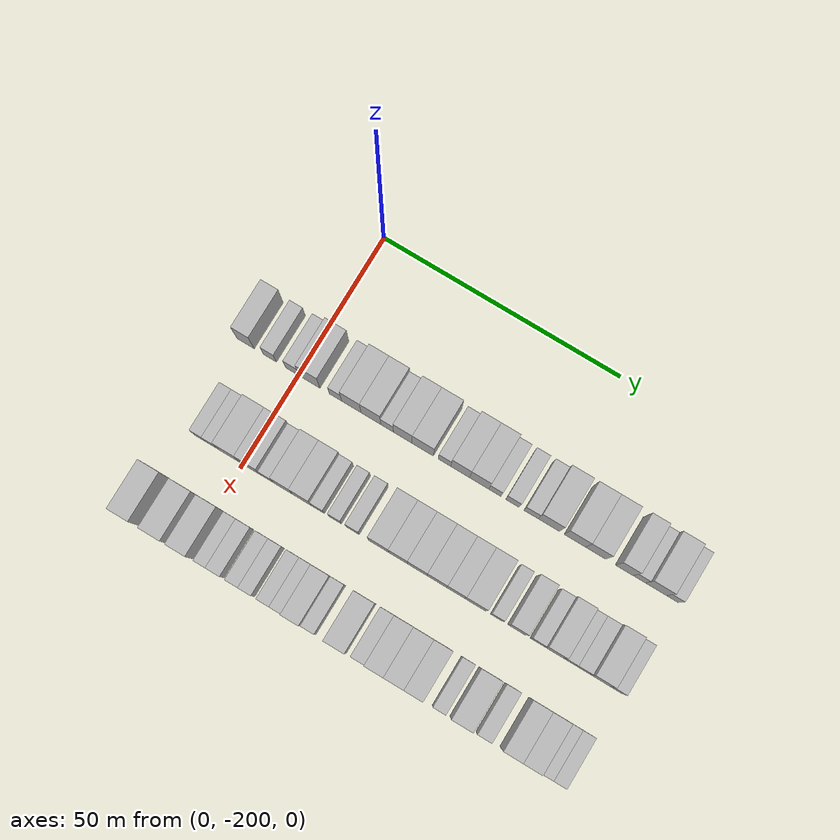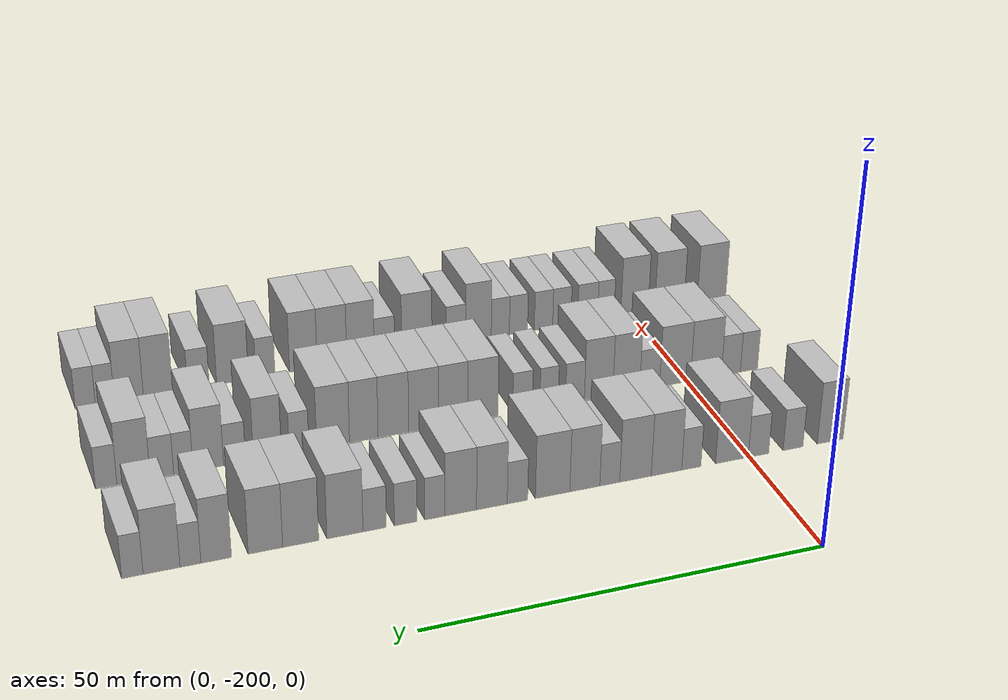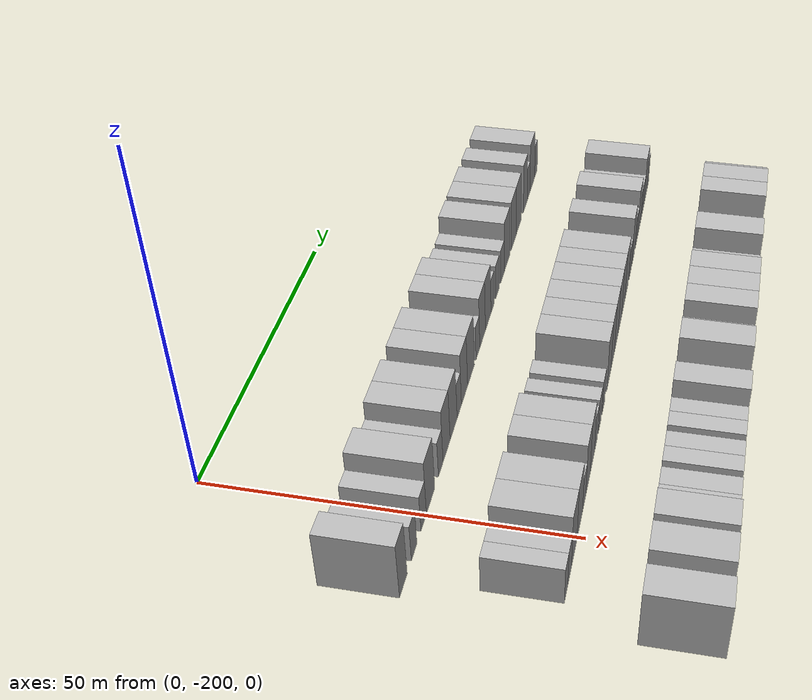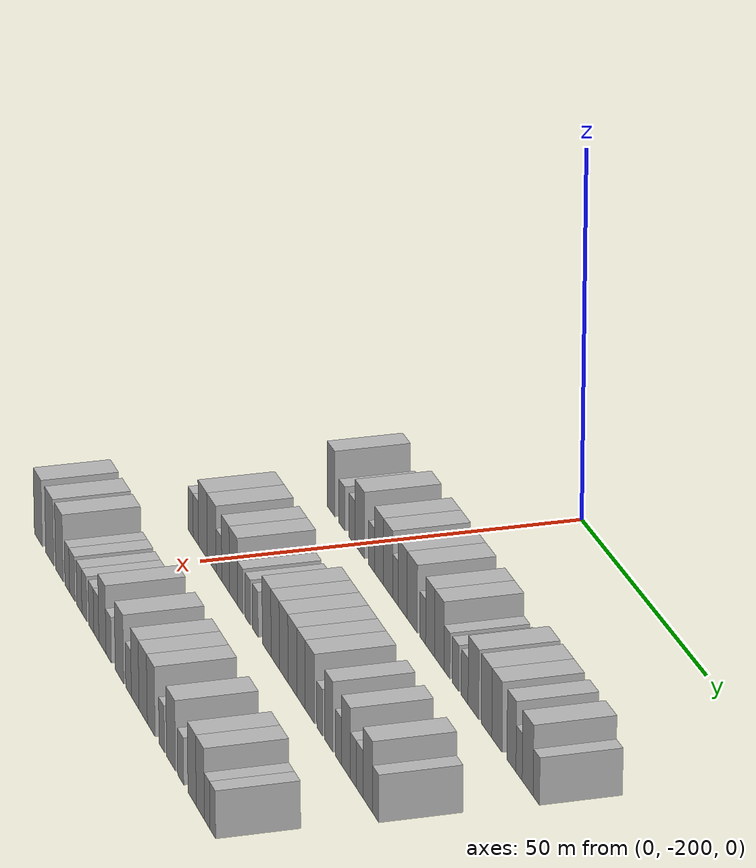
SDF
<sdf version="1.6">
 <world name="default">
  <model name="building_35">
   <static>1</static>
   <pose>25.0000 -211.2491 0 0.000000 0.000000 0.000000</pose>
   <link name="link">
    <pose>0 0 4.50 0 0 0</pose>
    <collision name="collision"><geometry><box><size>10.0000 3.6361 9.0000</size></box></geometry></collision>
    <visual name="visual">
     <cast_shadows>0</cast_shadows>
     <geometry><box><size>10.0000 3.6361 9.0000</size></box></geometry>
     <material>
      <script>
       <uri>model://HANNAS_wall/materials/scripts</uri>
       <uri>model://HANNAS_wall/materials/textures</uri>
       <name>vrc/HANNAS_wall</name>
      </script>
     </material>
    </visual>
   </link>
  </model>
  <model name="building_36">
   <static>1</static>
   <pose>25.0000 -206.0531 0 0.000000 0.000000 0.000000</pose>
   <link name="link">
    <pose>0 0 3.00 0 0 0</pose>
    <collision name="collision"><geometry><box><size>10.0000 2.7557 6.0000</size></box></geometry></collision>
    <visual name="visual">
     <cast_shadows>0</cast_shadows>
     <geometry><box><size>10.0000 2.7557 6.0000</size></box></geometry>
     <material>
      <script>
       <uri>model://HANNAS_wall/materials/scripts</uri>
       <uri>model://HANNAS_wall/materials/textures</uri>
       <name>vrc/HANNAS_wall</name>
      </script>
     </material>
    </visual>
   </link>
  </model>
  <model name="building_37">
   <static>1</static>
   <pose>25.0000 -201.2684 0 0.000000 0.000000 0.000000</pose>
   <link name="link">
    <pose>0 0 3.00 0 0 0</pose>
    <collision name="collision"><geometry><box><size>10.0000 2.8138 6.0000</size></box></geometry></collision>
    <visual name="visual">
     <cast_shadows>0</cast_shadows>
     <geometry><box><size>10.0000 2.8138 6.0000</size></box></geometry>
     <material>
      <script>
       <uri>model://HANNAS_wall/materials/scripts</uri>
       <uri>model://HANNAS_wall/materials/textures</uri>
       <name>vrc/HANNAS_wall</name>
      </script>
     </material>
    </visual>
   </link>
  </model>
  <model name="building_38">
   <static>1</static>
   <pose>25.0000 -197.6301 0 0.000000 0.000000 0.000000</pose>
   <link name="link">
    <pose>0 0 4.50 0 0 0</pose>
    <collision name="collision"><geometry><box><size>10.0000 4.4629 9.0000</size></box></geometry></collision>
    <visual name="visual">
     <cast_shadows>0</cast_shadows>
     <geometry><box><size>10.0000 4.4629 9.0000</size></box></geometry>
     <material>
      <script>
       <uri>model://HANNAS_wall/materials/scripts</uri>
       <uri>model://HANNAS_wall/materials/textures</uri>
       <name>vrc/HANNAS_wall</name>
      </script>
     </material>
    </visual>
   </link>
  </model>
  <model name="building_39">
   <static>1</static>
   <pose>25.0000 -192.0988 0 0.000000 0.000000 0.000000</pose>
   <link name="link">
    <pose>0 0 3.00 0 0 0</pose>
    <collision name="collision"><geometry><box><size>10.0000 2.5997 6.0000</size></box></geometry></collision>
    <visual name="visual">
     <cast_shadows>0</cast_shadows>
     <geometry><box><size>10.0000 2.5997 6.0000</size></box></geometry>
     <material>
      <script>
       <uri>model://HANNAS_wall/materials/scripts</uri>
       <uri>model://HANNAS_wall/materials/textures</uri>
       <name>vrc/HANNAS_wall</name>
      </script>
     </material>
    </visual>
   </link>
  </model>
  <model name="building_40">
   <static>1</static>
   <pose>25.0000 -188.7515 0 0.000000 0.000000 0.000000</pose>
   <link name="link">
    <pose>0 0 4.50 0 0 0</pose>
    <collision name="collision"><geometry><box><size>10.0000 4.0948 9.0000</size></box></geometry></collision>
    <visual name="visual">
     <cast_shadows>0</cast_shadows>
     <geometry><box><size>10.0000 4.0948 9.0000</size></box></geometry>
     <material>
      <script>
       <uri>model://HANNAS_wall/materials/scripts</uri>
       <uri>model://HANNAS_wall/materials/textures</uri>
       <name>vrc/HANNAS_wall</name>
      </script>
     </material>
    </visual>
   </link>
  </model>
  <model name="building_41">
   <static>1</static>
   <pose>25.0000 -184.6047 0 0.000000 0.000000 0.000000</pose>
   <link name="link">
    <pose>0 0 4.50 0 0 0</pose>
    <collision name="collision"><geometry><box><size>10.0000 4.1988 9.0000</size></box></geometry></collision>
    <visual name="visual">
     <cast_shadows>0</cast_shadows>
     <geometry><box><size>10.0000 4.1988 9.0000</size></box></geometry>
     <material>
      <script>
       <uri>model://HANNAS_wall/materials/scripts</uri>
       <uri>model://HANNAS_wall/materials/textures</uri>
       <name>vrc/HANNAS_wall</name>
      </script>
     </material>
    </visual>
   </link>
  </model>
  <model name="building_42">
   <static>1</static>
   <pose>25.0000 -181.1895 0 0.000000 0.000000 0.000000</pose>
   <link name="link">
    <pose>0 0 3.00 0 0 0</pose>
    <collision name="collision"><geometry><box><size>10.0000 2.6315 6.0000</size></box></geometry></collision>
    <visual name="visual">
     <cast_shadows>0</cast_shadows>
     <geometry><box><size>10.0000 2.6315 6.0000</size></box></geometry>
     <material>
      <script>
       <uri>model://HANNAS_wall/materials/scripts</uri>
       <uri>model://HANNAS_wall/materials/textures</uri>
       <name>vrc/HANNAS_wall</name>
      </script>
     </material>
    </visual>
   </link>
  </model>
  <model name="building_43">
   <static>1</static>
   <pose>25.0000 -177.9051 0 0.000000 0.000000 0.000000</pose>
   <link name="link">
    <pose>0 0 4.50 0 0 0</pose>
    <collision name="collision"><geometry><box><size>10.0000 3.9375 9.0000</size></box></geometry></collision>
    <visual name="visual">
     <cast_shadows>0</cast_shadows>
     <geometry><box><size>10.0000 3.9375 9.0000</size></box></geometry>
     <material>
      <script>
       <uri>model://HANNAS_wall/materials/scripts</uri>
       <uri>model://HANNAS_wall/materials/textures</uri>
       <name>vrc/HANNAS_wall</name>
      </script>
     </material>
    </visual>
   </link>
  </model>
  <model name="building_44">
   <static>1</static>
   <pose>25.0000 -173.6956 0 0.000000 0.000000 0.000000</pose>
   <link name="link">
    <pose>0 0 4.50 0 0 0</pose>
    <collision name="collision"><geometry><box><size>10.0000 4.4815 9.0000</size></box></geometry></collision>
    <visual name="visual">
     <cast_shadows>0</cast_shadows>
     <geometry><box><size>10.0000 4.4815 9.0000</size></box></geometry>
     <material>
      <script>
       <uri>model://HANNAS_wall/materials/scripts</uri>
       <uri>model://HANNAS_wall/materials/textures</uri>
       <name>vrc/HANNAS_wall</name>
      </script>
     </material>
    </visual>
   </link>
  </model>
  <model name="building_45">
   <static>1</static>
   <pose>25.0000 -169.1387 0 0.000000 0.000000 0.000000</pose>
   <link name="link">
    <pose>0 0 3.00 0 0 0</pose>
    <collision name="collision"><geometry><box><size>10.0000 2.6322 6.0000</size></box></geometry></collision>
    <visual name="visual">
     <cast_shadows>0</cast_shadows>
     <geometry><box><size>10.0000 2.6322 6.0000</size></box></geometry>
     <material>
      <script>
       <uri>model://HANNAS_wall/materials/scripts</uri>
       <uri>model://HANNAS_wall/materials/textures</uri>
       <name>vrc/HANNAS_wall</name>
      </script>
     </material>
    </visual>
   </link>
  </model>
  <model name="building_46">
   <static>1</static>
   <pose>25.0000 -165.8523 0 0.000000 0.000000 0.000000</pose>
   <link name="link">
    <pose>0 0 4.50 0 0 0</pose>
    <collision name="collision"><geometry><box><size>10.0000 3.9406 9.0000</size></box></geometry></collision>
    <visual name="visual">
     <cast_shadows>0</cast_shadows>
     <geometry><box><size>10.0000 3.9406 9.0000</size></box></geometry>
     <material>
      <script>
       <uri>model://HANNAS_wall/materials/scripts</uri>
       <uri>model://HANNAS_wall/materials/textures</uri>
       <name>vrc/HANNAS_wall</name>
      </script>
     </material>
    </visual>
   </link>
  </model>
  <model name="building_47">
   <static>1</static>
   <pose>25.0000 -161.8768 0 0.000000 0.000000 0.000000</pose>
   <link name="link">
    <pose>0 0 4.50 0 0 0</pose>
    <collision name="collision"><geometry><box><size>10.0000 4.0105 9.0000</size></box></geometry></collision>
    <visual name="visual">
     <cast_shadows>0</cast_shadows>
     <geometry><box><size>10.0000 4.0105 9.0000</size></box></geometry>
     <material>
      <script>
       <uri>model://HANNAS_wall/materials/scripts</uri>
       <uri>model://HANNAS_wall/materials/textures</uri>
       <name>vrc/HANNAS_wall</name>
      </script>
     </material>
    </visual>
   </link>
  </model>
  <model name="building_48">
   <static>1</static>
   <pose>25.0000 -158.6008 0 0.000000 0.000000 0.000000</pose>
   <link name="link">
    <pose>0 0 3.00 0 0 0</pose>
    <collision name="collision"><geometry><box><size>10.0000 2.5414 6.0000</size></box></geometry></collision>
    <visual name="visual">
     <cast_shadows>0</cast_shadows>
     <geometry><box><size>10.0000 2.5414 6.0000</size></box></geometry>
     <material>
      <script>
       <uri>model://HANNAS_wall/materials/scripts</uri>
       <uri>model://HANNAS_wall/materials/textures</uri>
       <name>vrc/HANNAS_wall</name>
      </script>
     </material>
    </visual>
   </link>
  </model>
  <model name="building_49">
   <static>1</static>
   <pose>25.0000 -154.9252 0 0.000000 0.000000 0.000000</pose>
   <link name="link">
    <pose>0 0 3.00 0 0 0</pose>
    <collision name="collision"><geometry><box><size>10.0000 2.8098 6.0000</size></box></geometry></collision>
    <visual name="visual">
     <cast_shadows>0</cast_shadows>
     <geometry><box><size>10.0000 2.8098 6.0000</size></box></geometry>
     <material>
      <script>
       <uri>model://HANNAS_wall/materials/scripts</uri>
       <uri>model://HANNAS_wall/materials/textures</uri>
       <name>vrc/HANNAS_wall</name>
      </script>
     </material>
    </visual>
   </link>
  </model>
  <model name="building_50">
   <static>1</static>
   <pose>25.0000 -151.0705 0 0.000000 0.000000 0.000000</pose>
   <link name="link">
    <pose>0 0 3.00 0 0 0</pose>
    <collision name="collision"><geometry><box><size>10.0000 2.8996 6.0000</size></box></geometry></collision>
    <visual name="visual">
     <cast_shadows>0</cast_shadows>
     <geometry><box><size>10.0000 2.8996 6.0000</size></box></geometry>
     <material>
      <script>
       <uri>model://HANNAS_wall/materials/scripts</uri>
       <uri>model://HANNAS_wall/materials/textures</uri>
       <name>vrc/HANNAS_wall</name>
      </script>
     </material>
    </visual>
   </link>
  </model>
  <model name="building_51">
   <static>1</static>
   <pose>25.0000 -147.3986 0 0.000000 0.000000 0.000000</pose>
   <link name="link">
    <pose>0 0 4.50 0 0 0</pose>
    <collision name="collision"><geometry><box><size>10.0000 4.4442 9.0000</size></box></geometry></collision>
    <visual name="visual">
     <cast_shadows>0</cast_shadows>
     <geometry><box><size>10.0000 4.4442 9.0000</size></box></geometry>
     <material>
      <script>
       <uri>model://HANNAS_wall/materials/scripts</uri>
       <uri>model://HANNAS_wall/materials/textures</uri>
       <name>vrc/HANNAS_wall</name>
      </script>
     </material>
    </visual>
   </link>
  </model>
  <model name="building_52">
   <static>1</static>
   <pose>25.0000 -141.9853 0 0.000000 0.000000 0.000000</pose>
   <link name="link">
    <pose>0 0 4.50 0 0 0</pose>
    <collision name="collision"><geometry><box><size>10.0000 4.3824 9.0000</size></box></geometry></collision>
    <visual name="visual">
     <cast_shadows>0</cast_shadows>
     <geometry><box><size>10.0000 4.3824 9.0000</size></box></geometry>
     <material>
      <script>
       <uri>model://HANNAS_wall/materials/scripts</uri>
       <uri>model://HANNAS_wall/materials/textures</uri>
       <name>vrc/HANNAS_wall</name>
      </script>
     </material>
    </visual>
   </link>
  </model>
  <model name="building_53">
   <static>1</static>
   <pose>25.0000 -137.7094 0 0.000000 0.000000 0.000000</pose>
   <link name="link">
    <pose>0 0 4.50 0 0 0</pose>
    <collision name="collision"><geometry><box><size>10.0000 4.1693 9.0000</size></box></geometry></collision>
    <visual name="visual">
     <cast_shadows>0</cast_shadows>
     <geometry><box><size>10.0000 4.1693 9.0000</size></box></geometry>
     <material>
      <script>
       <uri>model://HANNAS_wall/materials/scripts</uri>
       <uri>model://HANNAS_wall/materials/textures</uri>
       <name>vrc/HANNAS_wall</name>
      </script>
     </material>
    </visual>
   </link>
  </model>
  <model name="building_54">
   <static>1</static>
   <pose>25.0000 -131.8078 0 0.000000 0.000000 0.000000</pose>
   <link name="link">
    <pose>0 0 4.50 0 0 0</pose>
    <collision name="collision"><geometry><box><size>10.0000 3.6338 9.0000</size></box></geometry></collision>
    <visual name="visual">
     <cast_shadows>0</cast_shadows>
     <geometry><box><size>10.0000 3.6338 9.0000</size></box></geometry>
     <material>
      <script>
       <uri>model://HANNAS_wall/materials/scripts</uri>
       <uri>model://HANNAS_wall/materials/textures</uri>
       <name>vrc/HANNAS_wall</name>
      </script>
     </material>
    </visual>
   </link>
  </model>
  <model name="building_55">
   <static>1</static>
   <pose>25.0000 -128.7550 0 0.000000 0.000000 0.000000</pose>
   <link name="link">
    <pose>0 0 3.00 0 0 0</pose>
    <collision name="collision"><geometry><box><size>10.0000 2.4718 6.0000</size></box></geometry></collision>
    <visual name="visual">
     <cast_shadows>0</cast_shadows>
     <geometry><box><size>10.0000 2.4718 6.0000</size></box></geometry>
     <material>
      <script>
       <uri>model://HANNAS_wall/materials/scripts</uri>
       <uri>model://HANNAS_wall/materials/textures</uri>
       <name>vrc/HANNAS_wall</name>
      </script>
     </material>
    </visual>
   </link>
  </model>
  <model name="building_56">
   <static>1</static>
   <pose>25.0000 -125.3522 0 0.000000 0.000000 0.000000</pose>
   <link name="link">
    <pose>0 0 4.50 0 0 0</pose>
    <collision name="collision"><geometry><box><size>10.0000 4.3337 9.0000</size></box></geometry></collision>
    <visual name="visual">
     <cast_shadows>0</cast_shadows>
     <geometry><box><size>10.0000 4.3337 9.0000</size></box></geometry>
     <material>
      <script>
       <uri>model://HANNAS_wall/materials/scripts</uri>
       <uri>model://HANNAS_wall/materials/textures</uri>
       <name>vrc/HANNAS_wall</name>
      </script>
     </material>
    </visual>
   </link>
  </model>
  <model name="building_57">
   <static>1</static>
   <pose>25.0000 -121.9350 0 0.000000 0.000000 0.000000</pose>
   <link name="link">
    <pose>0 0 3.00 0 0 0</pose>
    <collision name="collision"><geometry><box><size>10.0000 2.5006 6.0000</size></box></geometry></collision>
    <visual name="visual">
     <cast_shadows>0</cast_shadows>
     <geometry><box><size>10.0000 2.5006 6.0000</size></box></geometry>
     <material>
      <script>
       <uri>model://HANNAS_wall/materials/scripts</uri>
       <uri>model://HANNAS_wall/materials/textures</uri>
       <name>vrc/HANNAS_wall</name>
      </script>
     </material>
    </visual>
   </link>
  </model>
  <model name="building_210">
   <static>1</static>
   <pose>44.0000 -209.0147 0 0.000000 0.000000 0.000000</pose>
   <link name="link">
    <pose>0 0 3.00 0 0 0</pose>
    <collision name="collision"><geometry><box><size>10.0000 2.5054 6.0000</size></box></geometry></collision>
    <visual name="visual">
     <cast_shadows>0</cast_shadows>
     <geometry><box><size>10.0000 2.5054 6.0000</size></box></geometry>
     <material>
      <script>
       <uri>model://HANNAS_wall/materials/scripts</uri>
       <uri>model://HANNAS_wall/materials/textures</uri>
       <name>vrc/HANNAS_wall</name>
      </script>
     </material>
    </visual>
   </link>
  </model>
  <model name="building_211">
   <static>1</static>
   <pose>44.0000 -206.3805 0 0.000000 0.000000 0.000000</pose>
   <link name="link">
    <pose>0 0 3.00 0 0 0</pose>
    <collision name="collision"><geometry><box><size>10.0000 2.7629 6.0000</size></box></geometry></collision>
    <visual name="visual">
     <cast_shadows>0</cast_shadows>
     <geometry><box><size>10.0000 2.7629 6.0000</size></box></geometry>
     <material>
      <script>
       <uri>model://HANNAS_wall/materials/scripts</uri>
       <uri>model://HANNAS_wall/materials/textures</uri>
       <name>vrc/HANNAS_wall</name>
      </script>
     </material>
    </visual>
   </link>
  </model>
  <model name="building_212">
   <static>1</static>
   <pose>44.0000 -202.7674 0 0.000000 0.000000 0.000000</pose>
   <link name="link">
    <pose>0 0 4.50 0 0 0</pose>
    <collision name="collision"><geometry><box><size>10.0000 4.4634 9.0000</size></box></geometry></collision>
    <visual name="visual">
     <cast_shadows>0</cast_shadows>
     <geometry><box><size>10.0000 4.4634 9.0000</size></box></geometry>
     <material>
      <script>
       <uri>model://HANNAS_wall/materials/scripts</uri>
       <uri>model://HANNAS_wall/materials/textures</uri>
       <name>vrc/HANNAS_wall</name>
      </script>
     </material>
    </visual>
   </link>
  </model>
  <model name="building_213">
   <static>1</static>
   <pose>44.0000 -198.2995 0 0.000000 0.000000 0.000000</pose>
   <link name="link">
    <pose>0 0 4.50 0 0 0</pose>
    <collision name="collision"><geometry><box><size>10.0000 4.4724 9.0000</size></box></geometry></collision>
    <visual name="visual">
     <cast_shadows>0</cast_shadows>
     <geometry><box><size>10.0000 4.4724 9.0000</size></box></geometry>
     <material>
      <script>
       <uri>model://HANNAS_wall/materials/scripts</uri>
       <uri>model://HANNAS_wall/materials/textures</uri>
       <name>vrc/HANNAS_wall</name>
      </script>
     </material>
    </visual>
   </link>
  </model>
  <model name="building_214">
   <static>1</static>
   <pose>44.0000 -194.6533 0 0.000000 0.000000 0.000000</pose>
   <link name="link">
    <pose>0 0 3.00 0 0 0</pose>
    <collision name="collision"><geometry><box><size>10.0000 2.8201 6.0000</size></box></geometry></collision>
    <visual name="visual">
     <cast_shadows>0</cast_shadows>
     <geometry><box><size>10.0000 2.8201 6.0000</size></box></geometry>
     <material>
      <script>
       <uri>model://HANNAS_wall/materials/scripts</uri>
       <uri>model://HANNAS_wall/materials/textures</uri>
       <name>vrc/HANNAS_wall</name>
      </script>
     </material>
    </visual>
   </link>
  </model>
  <model name="building_215">
   <static>1</static>
   <pose>44.0000 -191.3345 0 0.000000 0.000000 0.000000</pose>
   <link name="link">
    <pose>0 0 4.50 0 0 0</pose>
    <collision name="collision"><geometry><box><size>10.0000 3.8174 9.0000</size></box></geometry></collision>
    <visual name="visual">
     <cast_shadows>0</cast_shadows>
     <geometry><box><size>10.0000 3.8174 9.0000</size></box></geometry>
     <material>
      <script>
       <uri>model://HANNAS_wall/materials/scripts</uri>
       <uri>model://HANNAS_wall/materials/textures</uri>
       <name>vrc/HANNAS_wall</name>
      </script>
     </material>
    </visual>
   </link>
  </model>
  <model name="building_216">
   <static>1</static>
   <pose>44.0000 -187.4266 0 0.000000 0.000000 0.000000</pose>
   <link name="link">
    <pose>0 0 4.50 0 0 0</pose>
    <collision name="collision"><geometry><box><size>10.0000 3.9984 9.0000</size></box></geometry></collision>
    <visual name="visual">
     <cast_shadows>0</cast_shadows>
     <geometry><box><size>10.0000 3.9984 9.0000</size></box></geometry>
     <material>
      <script>
       <uri>model://HANNAS_wall/materials/scripts</uri>
       <uri>model://HANNAS_wall/materials/textures</uri>
       <name>vrc/HANNAS_wall</name>
      </script>
     </material>
    </visual>
   </link>
  </model>
  <model name="building_217">
   <static>1</static>
   <pose>44.0000 -184.1020 0 0.000000 0.000000 0.000000</pose>
   <link name="link">
    <pose>0 0 3.00 0 0 0</pose>
    <collision name="collision"><geometry><box><size>10.0000 2.6508 6.0000</size></box></geometry></collision>
    <visual name="visual">
     <cast_shadows>0</cast_shadows>
     <geometry><box><size>10.0000 2.6508 6.0000</size></box></geometry>
     <material>
      <script>
       <uri>model://HANNAS_wall/materials/scripts</uri>
       <uri>model://HANNAS_wall/materials/textures</uri>
       <name>vrc/HANNAS_wall</name>
      </script>
     </material>
    </visual>
   </link>
  </model>
  <model name="building_218">
   <static>1</static>
   <pose>44.0000 -180.4917 0 0.000000 0.000000 0.000000</pose>
   <link name="link">
    <pose>0 0 3.00 0 0 0</pose>
    <collision name="collision"><geometry><box><size>10.0000 2.5696 6.0000</size></box></geometry></collision>
    <visual name="visual">
     <cast_shadows>0</cast_shadows>
     <geometry><box><size>10.0000 2.5696 6.0000</size></box></geometry>
     <material>
      <script>
       <uri>model://HANNAS_wall/materials/scripts</uri>
       <uri>model://HANNAS_wall/materials/textures</uri>
       <name>vrc/HANNAS_wall</name>
      </script>
     </material>
    </visual>
   </link>
  </model>
  <model name="building_219">
   <static>1</static>
   <pose>44.0000 -176.8438 0 0.000000 0.000000 0.000000</pose>
   <link name="link">
    <pose>0 0 3.00 0 0 0</pose>
    <collision name="collision"><geometry><box><size>10.0000 2.7263 6.0000</size></box></geometry></collision>
    <visual name="visual">
     <cast_shadows>0</cast_shadows>
     <geometry><box><size>10.0000 2.7263 6.0000</size></box></geometry>
     <material>
      <script>
       <uri>model://HANNAS_wall/materials/scripts</uri>
       <uri>model://HANNAS_wall/materials/textures</uri>
       <name>vrc/HANNAS_wall</name>
      </script>
     </material>
    </visual>
   </link>
  </model>
  <model name="building_220">
   <static>1</static>
   <pose>44.0000 -171.3957 0 0.000000 0.000000 0.000000</pose>
   <link name="link">
    <pose>0 0 4.50 0 0 0</pose>
    <collision name="collision"><geometry><box><size>10.0000 4.1698 9.0000</size></box></geometry></collision>
    <visual name="visual">
     <cast_shadows>0</cast_shadows>
     <geometry><box><size>10.0000 4.1698 9.0000</size></box></geometry>
     <material>
      <script>
       <uri>model://HANNAS_wall/materials/scripts</uri>
       <uri>model://HANNAS_wall/materials/textures</uri>
       <name>vrc/HANNAS_wall</name>
      </script>
     </material>
    </visual>
   </link>
  </model>
  <model name="building_221">
   <static>1</static>
   <pose>44.0000 -167.3789 0 0.000000 0.000000 0.000000</pose>
   <link name="link">
    <pose>0 0 4.50 0 0 0</pose>
    <collision name="collision"><geometry><box><size>10.0000 3.8640 9.0000</size></box></geometry></collision>
    <visual name="visual">
     <cast_shadows>0</cast_shadows>
     <geometry><box><size>10.0000 3.8640 9.0000</size></box></geometry>
     <material>
      <script>
       <uri>model://HANNAS_wall/materials/scripts</uri>
       <uri>model://HANNAS_wall/materials/textures</uri>
       <name>vrc/HANNAS_wall</name>
      </script>
     </material>
    </visual>
   </link>
  </model>
  <model name="building_222">
   <static>1</static>
   <pose>44.0000 -163.4133 0 0.000000 0.000000 0.000000</pose>
   <link name="link">
    <pose>0 0 4.50 0 0 0</pose>
    <collision name="collision"><geometry><box><size>10.0000 4.0671 9.0000</size></box></geometry></collision>
    <visual name="visual">
     <cast_shadows>0</cast_shadows>
     <geometry><box><size>10.0000 4.0671 9.0000</size></box></geometry>
     <material>
      <script>
       <uri>model://HANNAS_wall/materials/scripts</uri>
       <uri>model://HANNAS_wall/materials/textures</uri>
       <name>vrc/HANNAS_wall</name>
      </script>
     </material>
    </visual>
   </link>
  </model>
  <model name="building_223">
   <static>1</static>
   <pose>44.0000 -159.3458 0 0.000000 0.000000 0.000000</pose>
   <link name="link">
    <pose>0 0 4.50 0 0 0</pose>
    <collision name="collision"><geometry><box><size>10.0000 4.0679 9.0000</size></box></geometry></collision>
    <visual name="visual">
     <cast_shadows>0</cast_shadows>
     <geometry><box><size>10.0000 4.0679 9.0000</size></box></geometry>
     <material>
      <script>
       <uri>model://HANNAS_wall/materials/scripts</uri>
       <uri>model://HANNAS_wall/materials/textures</uri>
       <name>vrc/HANNAS_wall</name>
      </script>
     </material>
    </visual>
   </link>
  </model>
  <model name="building_224">
   <static>1</static>
   <pose>44.0000 -155.4281 0 0.000000 0.000000 0.000000</pose>
   <link name="link">
    <pose>0 0 4.50 0 0 0</pose>
    <collision name="collision"><geometry><box><size>10.0000 3.7675 9.0000</size></box></geometry></collision>
    <visual name="visual">
     <cast_shadows>0</cast_shadows>
     <geometry><box><size>10.0000 3.7675 9.0000</size></box></geometry>
     <material>
      <script>
       <uri>model://HANNAS_wall/materials/scripts</uri>
       <uri>model://HANNAS_wall/materials/textures</uri>
       <name>vrc/HANNAS_wall</name>
      </script>
     </material>
    </visual>
   </link>
  </model>
  <model name="building_225">
   <static>1</static>
   <pose>44.0000 -151.3949 0 0.000000 0.000000 0.000000</pose>
   <link name="link">
    <pose>0 0 4.50 0 0 0</pose>
    <collision name="collision"><geometry><box><size>10.0000 4.2988 9.0000</size></box></geometry></collision>
    <visual name="visual">
     <cast_shadows>0</cast_shadows>
     <geometry><box><size>10.0000 4.2988 9.0000</size></box></geometry>
     <material>
      <script>
       <uri>model://HANNAS_wall/materials/scripts</uri>
       <uri>model://HANNAS_wall/materials/textures</uri>
       <name>vrc/HANNAS_wall</name>
      </script>
     </material>
    </visual>
   </link>
  </model>
  <model name="building_226">
   <static>1</static>
   <pose>44.0000 -146.9667 0 0.000000 0.000000 0.000000</pose>
   <link name="link">
    <pose>0 0 3.00 0 0 0</pose>
    <collision name="collision"><geometry><box><size>10.0000 2.5577 6.0000</size></box></geometry></collision>
    <visual name="visual">
     <cast_shadows>0</cast_shadows>
     <geometry><box><size>10.0000 2.5577 6.0000</size></box></geometry>
     <material>
      <script>
       <uri>model://HANNAS_wall/materials/scripts</uri>
       <uri>model://HANNAS_wall/materials/textures</uri>
       <name>vrc/HANNAS_wall</name>
      </script>
     </material>
    </visual>
   </link>
  </model>
  <model name="building_227">
   <static>1</static>
   <pose>44.0000 -142.8786 0 0.000000 0.000000 0.000000</pose>
   <link name="link">
    <pose>0 0 4.50 0 0 0</pose>
    <collision name="collision"><geometry><box><size>10.0000 3.6185 9.0000</size></box></geometry></collision>
    <visual name="visual">
     <cast_shadows>0</cast_shadows>
     <geometry><box><size>10.0000 3.6185 9.0000</size></box></geometry>
     <material>
      <script>
       <uri>model://HANNAS_wall/materials/scripts</uri>
       <uri>model://HANNAS_wall/materials/textures</uri>
       <name>vrc/HANNAS_wall</name>
      </script>
     </material>
    </visual>
   </link>
  </model>
  <model name="building_228">
   <static>1</static>
   <pose>44.0000 -138.6681 0 0.000000 0.000000 0.000000</pose>
   <link name="link">
    <pose>0 0 3.00 0 0 0</pose>
    <collision name="collision"><geometry><box><size>10.0000 2.8025 6.0000</size></box></geometry></collision>
    <visual name="visual">
     <cast_shadows>0</cast_shadows>
     <geometry><box><size>10.0000 2.8025 6.0000</size></box></geometry>
     <material>
      <script>
       <uri>model://HANNAS_wall/materials/scripts</uri>
       <uri>model://HANNAS_wall/materials/textures</uri>
       <name>vrc/HANNAS_wall</name>
      </script>
     </material>
    </visual>
   </link>
  </model>
  <model name="building_229">
   <static>1</static>
   <pose>44.0000 -135.3295 0 0.000000 0.000000 0.000000</pose>
   <link name="link">
    <pose>0 0 4.50 0 0 0</pose>
    <collision name="collision"><geometry><box><size>10.0000 3.8747 9.0000</size></box></geometry></collision>
    <visual name="visual">
     <cast_shadows>0</cast_shadows>
     <geometry><box><size>10.0000 3.8747 9.0000</size></box></geometry>
     <material>
      <script>
       <uri>model://HANNAS_wall/materials/scripts</uri>
       <uri>model://HANNAS_wall/materials/textures</uri>
       <name>vrc/HANNAS_wall</name>
      </script>
     </material>
    </visual>
   </link>
  </model>
  <model name="building_230">
   <static>1</static>
   <pose>44.0000 -132.1748 0 0.000000 0.000000 0.000000</pose>
   <link name="link">
    <pose>0 0 3.00 0 0 0</pose>
    <collision name="collision"><geometry><box><size>10.0000 2.4348 6.0000</size></box></geometry></collision>
    <visual name="visual">
     <cast_shadows>0</cast_shadows>
     <geometry><box><size>10.0000 2.4348 6.0000</size></box></geometry>
     <material>
      <script>
       <uri>model://HANNAS_wall/materials/scripts</uri>
       <uri>model://HANNAS_wall/materials/textures</uri>
       <name>vrc/HANNAS_wall</name>
      </script>
     </material>
    </visual>
   </link>
  </model>
  <model name="building_231">
   <static>1</static>
   <pose>44.0000 -129.4868 0 0.000000 0.000000 0.000000</pose>
   <link name="link">
    <pose>0 0 3.00 0 0 0</pose>
    <collision name="collision"><geometry><box><size>10.0000 2.9411 6.0000</size></box></geometry></collision>
    <visual name="visual">
     <cast_shadows>0</cast_shadows>
     <geometry><box><size>10.0000 2.9411 6.0000</size></box></geometry>
     <material>
      <script>
       <uri>model://HANNAS_wall/materials/scripts</uri>
       <uri>model://HANNAS_wall/materials/textures</uri>
       <name>vrc/HANNAS_wall</name>
      </script>
     </material>
    </visual>
   </link>
  </model>
  <model name="building_232">
   <static>1</static>
   <pose>44.0000 -125.9477 0 0.000000 0.000000 0.000000</pose>
   <link name="link">
    <pose>0 0 4.50 0 0 0</pose>
    <collision name="collision"><geometry><box><size>10.0000 4.1373 9.0000</size></box></geometry></collision>
    <visual name="visual">
     <cast_shadows>0</cast_shadows>
     <geometry><box><size>10.0000 4.1373 9.0000</size></box></geometry>
     <material>
      <script>
       <uri>model://HANNAS_wall/materials/scripts</uri>
       <uri>model://HANNAS_wall/materials/textures</uri>
       <name>vrc/HANNAS_wall</name>
      </script>
     </material>
    </visual>
   </link>
  </model>
  <model name="building_233">
   <static>1</static>
   <pose>44.0000 -122.5496 0 0.000000 0.000000 0.000000</pose>
   <link name="link">
    <pose>0 0 3.00 0 0 0</pose>
    <collision name="collision"><geometry><box><size>10.0000 2.6588 6.0000</size></box></geometry></collision>
    <visual name="visual">
     <cast_shadows>0</cast_shadows>
     <geometry><box><size>10.0000 2.6588 6.0000</size></box></geometry>
     <material>
      <script>
       <uri>model://HANNAS_wall/materials/scripts</uri>
       <uri>model://HANNAS_wall/materials/textures</uri>
       <name>vrc/HANNAS_wall</name>
      </script>
     </material>
    </visual>
   </link>
  </model>
  <model name="building_386">
   <static>1</static>
   <pose>63.0000 -212.2696 0 0.000000 0.000000 0.000000</pose>
   <link name="link">
    <pose>0 0 4.50 0 0 0</pose>
    <collision name="collision"><geometry><box><size>10.0000 4.3951 9.0000</size></box></geometry></collision>
    <visual name="visual">
     <cast_shadows>0</cast_shadows>
     <geometry><box><size>10.0000 4.3951 9.0000</size></box></geometry>
     <material>
      <script>
       <uri>model://HANNAS_wall/materials/scripts</uri>
       <uri>model://HANNAS_wall/materials/textures</uri>
       <name>vrc/HANNAS_wall</name>
      </script>
     </material>
    </visual>
   </link>
  </model>
  <model name="building_387">
   <static>1</static>
   <pose>63.0000 -205.8389 0 0.000000 0.000000 0.000000</pose>
   <link name="link">
    <pose>0 0 4.50 0 0 0</pose>
    <collision name="collision"><geometry><box><size>10.0000 4.4661 9.0000</size></box></geometry></collision>
    <visual name="visual">
     <cast_shadows>0</cast_shadows>
     <geometry><box><size>10.0000 4.4661 9.0000</size></box></geometry>
     <material>
      <script>
       <uri>model://HANNAS_wall/materials/scripts</uri>
       <uri>model://HANNAS_wall/materials/textures</uri>
       <name>vrc/HANNAS_wall</name>
      </script>
     </material>
    </visual>
   </link>
  </model>
  <model name="building_388">
   <static>1</static>
   <pose>63.0000 -200.5360 0 0.000000 0.000000 0.000000</pose>
   <link name="link">
    <pose>0 0 4.50 0 0 0</pose>
    <collision name="collision"><geometry><box><size>10.0000 4.1398 9.0000</size></box></geometry></collision>
    <visual name="visual">
     <cast_shadows>0</cast_shadows>
     <geometry><box><size>10.0000 4.1398 9.0000</size></box></geometry>
     <material>
      <script>
       <uri>model://HANNAS_wall/materials/scripts</uri>
       <uri>model://HANNAS_wall/materials/textures</uri>
       <name>vrc/HANNAS_wall</name>
      </script>
     </material>
    </visual>
   </link>
  </model>
  <model name="building_389">
   <static>1</static>
   <pose>63.0000 -196.2243 0 0.000000 0.000000 0.000000</pose>
   <link name="link">
    <pose>0 0 3.00 0 0 0</pose>
    <collision name="collision"><geometry><box><size>10.0000 2.4836 6.0000</size></box></geometry></collision>
    <visual name="visual">
     <cast_shadows>0</cast_shadows>
     <geometry><box><size>10.0000 2.4836 6.0000</size></box></geometry>
     <material>
      <script>
       <uri>model://HANNAS_wall/materials/scripts</uri>
       <uri>model://HANNAS_wall/materials/textures</uri>
       <name>vrc/HANNAS_wall</name>
      </script>
     </material>
    </visual>
   </link>
  </model>
  <model name="building_390">
   <static>1</static>
   <pose>63.0000 -193.5029 0 0.000000 0.000000 0.000000</pose>
   <link name="link">
    <pose>0 0 3.00 0 0 0</pose>
    <collision name="collision"><geometry><box><size>10.0000 2.9592 6.0000</size></box></geometry></collision>
    <visual name="visual">
     <cast_shadows>0</cast_shadows>
     <geometry><box><size>10.0000 2.9592 6.0000</size></box></geometry>
     <material>
      <script>
       <uri>model://HANNAS_wall/materials/scripts</uri>
       <uri>model://HANNAS_wall/materials/textures</uri>
       <name>vrc/HANNAS_wall</name>
      </script>
     </material>
    </visual>
   </link>
  </model>
  <model name="building_391">
   <static>1</static>
   <pose>63.0000 -189.6736 0 0.000000 0.000000 0.000000</pose>
   <link name="link">
    <pose>0 0 3.00 0 0 0</pose>
    <collision name="collision"><geometry><box><size>10.0000 2.6993 6.0000</size></box></geometry></collision>
    <visual name="visual">
     <cast_shadows>0</cast_shadows>
     <geometry><box><size>10.0000 2.6993 6.0000</size></box></geometry>
     <material>
      <script>
       <uri>model://HANNAS_wall/materials/scripts</uri>
       <uri>model://HANNAS_wall/materials/textures</uri>
       <name>vrc/HANNAS_wall</name>
      </script>
     </material>
    </visual>
   </link>
  </model>
  <model name="building_392">
   <static>1</static>
   <pose>63.0000 -186.9709 0 0.000000 0.000000 0.000000</pose>
   <link name="link">
    <pose>0 0 3.00 0 0 0</pose>
    <collision name="collision"><geometry><box><size>10.0000 2.7061 6.0000</size></box></geometry></collision>
    <visual name="visual">
     <cast_shadows>0</cast_shadows>
     <geometry><box><size>10.0000 2.7061 6.0000</size></box></geometry>
     <material>
      <script>
       <uri>model://HANNAS_wall/materials/scripts</uri>
       <uri>model://HANNAS_wall/materials/textures</uri>
       <name>vrc/HANNAS_wall</name>
      </script>
     </material>
    </visual>
   </link>
  </model>
  <model name="building_393">
   <static>1</static>
   <pose>63.0000 -183.2868 0 0.000000 0.000000 0.000000</pose>
   <link name="link">
    <pose>0 0 3.00 0 0 0</pose>
    <collision name="collision"><geometry><box><size>10.0000 2.6621 6.0000</size></box></geometry></collision>
    <visual name="visual">
     <cast_shadows>0</cast_shadows>
     <geometry><box><size>10.0000 2.6621 6.0000</size></box></geometry>
     <material>
      <script>
       <uri>model://HANNAS_wall/materials/scripts</uri>
       <uri>model://HANNAS_wall/materials/textures</uri>
       <name>vrc/HANNAS_wall</name>
      </script>
     </material>
    </visual>
   </link>
  </model>
  <model name="building_394">
   <static>1</static>
   <pose>63.0000 -180.6456 0 0.000000 0.000000 0.000000</pose>
   <link name="link">
    <pose>0 0 3.00 0 0 0</pose>
    <collision name="collision"><geometry><box><size>10.0000 2.6202 6.0000</size></box></geometry></collision>
    <visual name="visual">
     <cast_shadows>0</cast_shadows>
     <geometry><box><size>10.0000 2.6202 6.0000</size></box></geometry>
     <material>
      <script>
       <uri>model://HANNAS_wall/materials/scripts</uri>
       <uri>model://HANNAS_wall/materials/textures</uri>
       <name>vrc/HANNAS_wall</name>
      </script>
     </material>
    </visual>
   </link>
  </model>
  <model name="building_395">
   <static>1</static>
   <pose>63.0000 -177.4689 0 0.000000 0.000000 0.000000</pose>
   <link name="link">
    <pose>0 0 4.50 0 0 0</pose>
    <collision name="collision"><geometry><box><size>10.0000 3.7332 9.0000</size></box></geometry></collision>
    <visual name="visual">
     <cast_shadows>0</cast_shadows>
     <geometry><box><size>10.0000 3.7332 9.0000</size></box></geometry>
     <material>
      <script>
       <uri>model://HANNAS_wall/materials/scripts</uri>
       <uri>model://HANNAS_wall/materials/textures</uri>
       <name>vrc/HANNAS_wall</name>
      </script>
     </material>
    </visual>
   </link>
  </model>
  <model name="building_396">
   <static>1</static>
   <pose>63.0000 -174.1981 0 0.000000 0.000000 0.000000</pose>
   <link name="link">
    <pose>0 0 3.00 0 0 0</pose>
    <collision name="collision"><geometry><box><size>10.0000 2.8084 6.0000</size></box></geometry></collision>
    <visual name="visual">
     <cast_shadows>0</cast_shadows>
     <geometry><box><size>10.0000 2.8084 6.0000</size></box></geometry>
     <material>
      <script>
       <uri>model://HANNAS_wall/materials/scripts</uri>
       <uri>model://HANNAS_wall/materials/textures</uri>
       <name>vrc/HANNAS_wall</name>
      </script>
     </material>
    </visual>
   </link>
  </model>
  <model name="building_397">
   <static>1</static>
   <pose>63.0000 -168.6347 0 0.000000 0.000000 0.000000</pose>
   <link name="link">
    <pose>0 0 4.50 0 0 0</pose>
    <collision name="collision"><geometry><box><size>10.0000 4.3183 9.0000</size></box></geometry></collision>
    <visual name="visual">
     <cast_shadows>0</cast_shadows>
     <geometry><box><size>10.0000 4.3183 9.0000</size></box></geometry>
     <material>
      <script>
       <uri>model://HANNAS_wall/materials/scripts</uri>
       <uri>model://HANNAS_wall/materials/textures</uri>
       <name>vrc/HANNAS_wall</name>
      </script>
     </material>
    </visual>
   </link>
  </model>
  <model name="building_398">
   <static>1</static>
   <pose>63.0000 -164.0449 0 0.000000 0.000000 0.000000</pose>
   <link name="link">
    <pose>0 0 3.00 0 0 0</pose>
    <collision name="collision"><geometry><box><size>10.0000 2.8614 6.0000</size></box></geometry></collision>
    <visual name="visual">
     <cast_shadows>0</cast_shadows>
     <geometry><box><size>10.0000 2.8614 6.0000</size></box></geometry>
     <material>
      <script>
       <uri>model://HANNAS_wall/materials/scripts</uri>
       <uri>model://HANNAS_wall/materials/textures</uri>
       <name>vrc/HANNAS_wall</name>
      </script>
     </material>
    </visual>
   </link>
  </model>
  <model name="building_399">
   <static>1</static>
   <pose>63.0000 -160.6847 0 0.000000 0.000000 0.000000</pose>
   <link name="link">
    <pose>0 0 4.50 0 0 0</pose>
    <collision name="collision"><geometry><box><size>10.0000 3.8591 9.0000</size></box></geometry></collision>
    <visual name="visual">
     <cast_shadows>0</cast_shadows>
     <geometry><box><size>10.0000 3.8591 9.0000</size></box></geometry>
     <material>
      <script>
       <uri>model://HANNAS_wall/materials/scripts</uri>
       <uri>model://HANNAS_wall/materials/textures</uri>
       <name>vrc/HANNAS_wall</name>
      </script>
     </material>
    </visual>
   </link>
  </model>
  <model name="building_400">
   <static>1</static>
   <pose>63.0000 -156.7003 0 0.000000 0.000000 0.000000</pose>
   <link name="link">
    <pose>0 0 4.50 0 0 0</pose>
    <collision name="collision"><geometry><box><size>10.0000 4.1096 9.0000</size></box></geometry></collision>
    <visual name="visual">
     <cast_shadows>0</cast_shadows>
     <geometry><box><size>10.0000 4.1096 9.0000</size></box></geometry>
     <material>
      <script>
       <uri>model://HANNAS_wall/materials/scripts</uri>
       <uri>model://HANNAS_wall/materials/textures</uri>
       <name>vrc/HANNAS_wall</name>
      </script>
     </material>
    </visual>
   </link>
  </model>
  <model name="building_401">
   <static>1</static>
   <pose>63.0000 -152.7359 0 0.000000 0.000000 0.000000</pose>
   <link name="link">
    <pose>0 0 4.50 0 0 0</pose>
    <collision name="collision"><geometry><box><size>10.0000 3.8193 9.0000</size></box></geometry></collision>
    <visual name="visual">
     <cast_shadows>0</cast_shadows>
     <geometry><box><size>10.0000 3.8193 9.0000</size></box></geometry>
     <material>
      <script>
       <uri>model://HANNAS_wall/materials/scripts</uri>
       <uri>model://HANNAS_wall/materials/textures</uri>
       <name>vrc/HANNAS_wall</name>
      </script>
     </material>
    </visual>
   </link>
  </model>
  <model name="building_402">
   <static>1</static>
   <pose>63.0000 -147.5192 0 0.000000 0.000000 0.000000</pose>
   <link name="link">
    <pose>0 0 3.00 0 0 0</pose>
    <collision name="collision"><geometry><box><size>10.0000 2.6140 6.0000</size></box></geometry></collision>
    <visual name="visual">
     <cast_shadows>0</cast_shadows>
     <geometry><box><size>10.0000 2.6140 6.0000</size></box></geometry>
     <material>
      <script>
       <uri>model://HANNAS_wall/materials/scripts</uri>
       <uri>model://HANNAS_wall/materials/textures</uri>
       <name>vrc/HANNAS_wall</name>
      </script>
     </material>
    </visual>
   </link>
  </model>
  <model name="building_403">
   <static>1</static>
   <pose>63.0000 -143.0560 0 0.000000 0.000000 0.000000</pose>
   <link name="link">
    <pose>0 0 4.50 0 0 0</pose>
    <collision name="collision"><geometry><box><size>10.0000 4.3125 9.0000</size></box></geometry></collision>
    <visual name="visual">
     <cast_shadows>0</cast_shadows>
     <geometry><box><size>10.0000 4.3125 9.0000</size></box></geometry>
     <material>
      <script>
       <uri>model://HANNAS_wall/materials/scripts</uri>
       <uri>model://HANNAS_wall/materials/textures</uri>
       <name>vrc/HANNAS_wall</name>
      </script>
     </material>
    </visual>
   </link>
  </model>
  <model name="building_404">
   <static>1</static>
   <pose>63.0000 -138.4436 0 0.000000 0.000000 0.000000</pose>
   <link name="link">
    <pose>0 0 3.00 0 0 0</pose>
    <collision name="collision"><geometry><box><size>10.0000 2.9123 6.0000</size></box></geometry></collision>
    <visual name="visual">
     <cast_shadows>0</cast_shadows>
     <geometry><box><size>10.0000 2.9123 6.0000</size></box></geometry>
     <material>
      <script>
       <uri>model://HANNAS_wall/materials/scripts</uri>
       <uri>model://HANNAS_wall/materials/textures</uri>
       <name>vrc/HANNAS_wall</name>
      </script>
     </material>
    </visual>
   </link>
  </model>
  <model name="building_405">
   <static>1</static>
   <pose>63.0000 -133.0437 0 0.000000 0.000000 0.000000</pose>
   <link name="link">
    <pose>0 0 4.50 0 0 0</pose>
    <collision name="collision"><geometry><box><size>10.0000 3.8876 9.0000</size></box></geometry></collision>
    <visual name="visual">
     <cast_shadows>0</cast_shadows>
     <geometry><box><size>10.0000 3.8876 9.0000</size></box></geometry>
     <material>
      <script>
       <uri>model://HANNAS_wall/materials/scripts</uri>
       <uri>model://HANNAS_wall/materials/textures</uri>
       <name>vrc/HANNAS_wall</name>
      </script>
     </material>
    </visual>
   </link>
  </model>
  <model name="building_406">
   <static>1</static>
   <pose>63.0000 -129.1832 0 0.000000 0.000000 0.000000</pose>
   <link name="link">
    <pose>0 0 4.50 0 0 0</pose>
    <collision name="collision"><geometry><box><size>10.0000 3.8333 9.0000</size></box></geometry></collision>
    <visual name="visual">
     <cast_shadows>0</cast_shadows>
     <geometry><box><size>10.0000 3.8333 9.0000</size></box></geometry>
     <material>
      <script>
       <uri>model://HANNAS_wall/materials/scripts</uri>
       <uri>model://HANNAS_wall/materials/textures</uri>
       <name>vrc/HANNAS_wall</name>
      </script>
     </material>
    </visual>
   </link>
  </model>
  <model name="building_407">
   <static>1</static>
   <pose>63.0000 -126.0201 0 0.000000 0.000000 0.000000</pose>
   <link name="link">
    <pose>0 0 3.00 0 0 0</pose>
    <collision name="collision"><geometry><box><size>10.0000 2.4930 6.0000</size></box></geometry></collision>
    <visual name="visual">
     <cast_shadows>0</cast_shadows>
     <geometry><box><size>10.0000 2.4930 6.0000</size></box></geometry>
     <material>
      <script>
       <uri>model://HANNAS_wall/materials/scripts</uri>
       <uri>model://HANNAS_wall/materials/textures</uri>
       <name>vrc/HANNAS_wall</name>
      </script>
     </material>
    </visual>
   </link>
  </model>
  <model name="building_408">
   <static>1</static>
   <pose>63.0000 -123.4585 0 0.000000 0.000000 0.000000</pose>
   <link name="link">
    <pose>0 0 3.00 0 0 0</pose>
    <collision name="collision"><geometry><box><size>10.0000 2.6302 6.0000</size></box></geometry></collision>
    <visual name="visual">
     <cast_shadows>0</cast_shadows>
     <geometry><box><size>10.0000 2.6302 6.0000</size></box></geometry>
     <material>
      <script>
       <uri>model://HANNAS_wall/materials/scripts</uri>
       <uri>model://HANNAS_wall/materials/textures</uri>
       <name>vrc/HANNAS_wall</name>
      </script>
     </material>
    </visual>
   </link>
  </model>
 </world>
</sdf>
